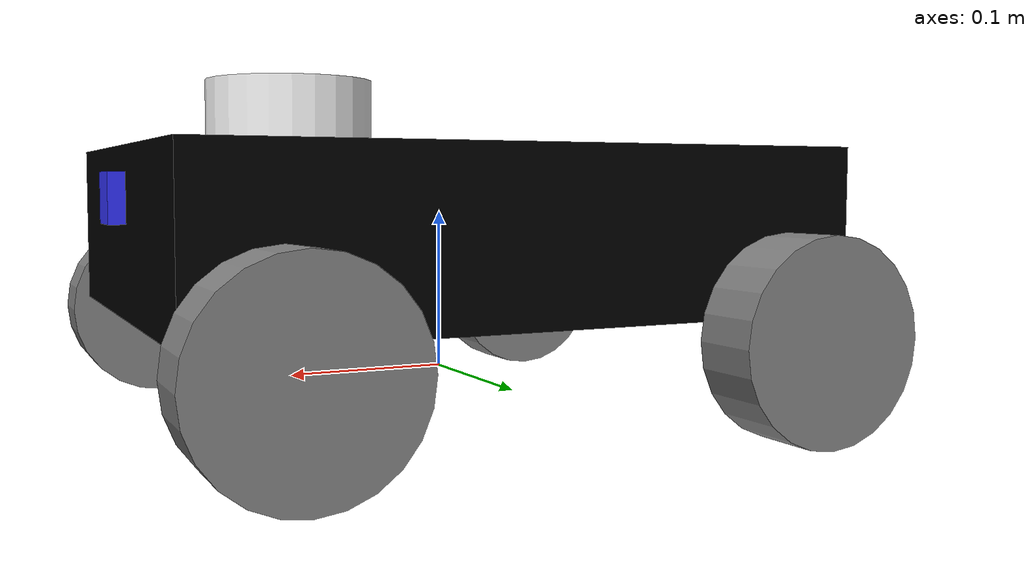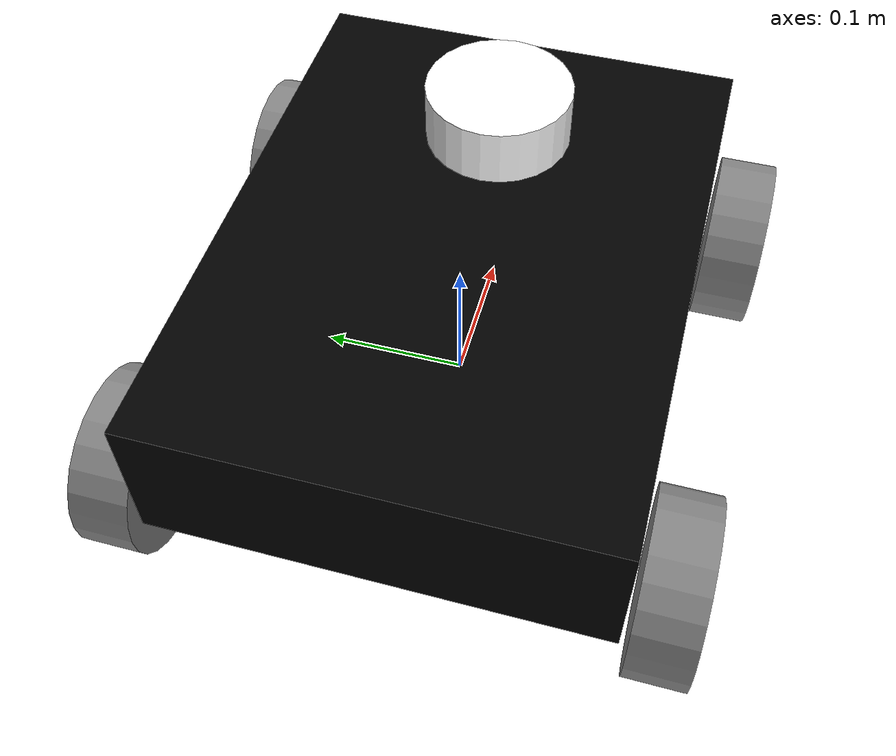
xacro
<?xml version="1.0"?>
<robot xmlns:xacro="http://www.ros.org/wiki/xacro">

    <xacro:include filename="inertial_macro.xacro" />
    <xacro:include filename="gazebo_control.xacro" />
    <xacro:include filename="lidar.xacro" />
    <xacro:include filename="camera.xacro" />

    <material name="white">
        <color rgba="1 1 1 1"/>
    </material>

    <material name="gray">
        <color rgba="0.52 0.52 0.52 1"/>
    </material>

    <material name="blue">
        <color rgba="0.2 0.2 1 1"/>
    </material>

    <material name="black">
        <color rgba="0 0 0 1"/>
    </material>

    <!--Define robot constants-->
    <xacro:property name = "base_width" value="0.3"/>
    <xacro:property name = "base_height" value="0.1"/>
    <xacro:property name = "base_length" value="0.4"/>

    <xacro:property name = "wheel_radius" value="0.06"/>
    <xacro:property name = "wheel_width" value="0.04"/>
    <xacro:property name = "wheel_ygap" value="0.025"/>
    <xacro:property name = "wheel_zoff" value="0.03"/>
    <xacro:property name = "wheel_xoff" value="0.15"/>

    <!--Robot Footprint-required for navigation to get robot center-->
    <link name="base_footprint">
    </link>

    <joint name="base_footprint_to_base_link" type="fixed">
        <parent link="base_footprint"/>
        <child link="base_link"/>
        <origin xyz="0.0 0.0 ${(wheel_radius+wheel_zoff)}" rpy="0 0 0"/>
    </joint>

    <!--Robot base-->
    <link name="base_link">
        <visual>
            <origin xyz="0 0 0" rpy="0 0 0"/>
            <geometry>
                <box size="${base_length} ${base_width} ${base_height}"/>
            </geometry>
            <material name="black"/>
        </visual>
        <collision>
            <geometry>
                <box size="${base_length} ${base_width} ${base_height}"/>
            </geometry>
        </collision>
        <xacro:inertial_box
            mass="15" y="${base_width}" z="${base_height}" x="${base_length}">
            <origin xyz="0 0 0" rpy="0 0 0"/>
        </xacro:inertial_box>
    </link>
    <gazebo reference="base_link">
        <material>Gazebo/Black</material>
    </gazebo>

    <!-- Wheels -->
    <xacro:macro name="wheel" params="prefix x_reflect y_reflect pitch axis">

        <joint name="${prefix}_joint" type="continuous">
            <parent link="base_footprint"/>
            <child link="${prefix}_link"/>
            <origin xyz="${x_reflect*wheel_xoff} ${y_reflect*(base_width/2+wheel_ygap)} ${wheel_zoff}" rpy="${pitch*pi/2} 0 0"/>
            <axis xyz="0 0 ${axis}"/>
        </joint>

        <link name="${prefix}_link">
            <visual>
                <origin xyz="0 0 0" rpy="0 0 0"/>
                <geometry>
                    <cylinder radius="${wheel_radius}" length="${wheel_width}"/>
                </geometry>
                <material name="gray"/>
            </visual>
            <collision>
                <origin xyz="0 0 0" rpy="0 0 0"/>
                <geometry>
                    <cylinder radius="${wheel_radius}" length="${wheel_width}"/>
                </geometry>
            </collision>
            <xacro:inertial_cylinder
                mass="0.5" radius="${wheel_radius}" length="${wheel_width}">
                <origin xyz="0 0 0" rpy="0 0 0"/>
            </xacro:inertial_cylinder>
        </link>
        <gazebo reference="${prefix}_link">
            <material>Gazebo/Gray</material>
        </gazebo>

    </xacro:macro>

    <xacro:wheel prefix="front_lwheel" x_reflect="1" y_reflect="1" pitch="-1" axis="1"/>
    <xacro:wheel prefix="front_rwheel" x_reflect="1" y_reflect="-1" pitch="1" axis="-1"/>
    <xacro:wheel prefix="rear_lwheel" x_reflect="-1" y_reflect="1" pitch="-1" axis="1"/>
    <xacro:wheel prefix="rear_rwheel" x_reflect="-1" y_reflect="-1" pitch="1" axis="-1"/>

</robot>

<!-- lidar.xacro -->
<robot xmlns:xacro="http://www.ros.org/wiki/xacro" >

    <joint name="laser_joint" type="fixed">
        <parent link="base_link"/>
        <child link="laser_sensor"/>
        <origin xyz="0.1 0.0 0.07" rpy=" 0 0 0"/>
    </joint>

    <link name="laser_sensor">
        <visual>
            <geometry>
                <cylinder radius="0.05" length="0.04"/>
            </geometry>
            <material name="white"/>
        </visual>
        <collision>
            <geometry>
                <cylinder radius="0.05" length="0.04"/>
            </geometry>
        </collision>

        <xacro:inertial_cylinder mass="0.1" length="0.04" radius="0.05">
            <origin xyz="0 0 0" rpy="0 0 0"/>
        </xacro:inertial_cylinder>

    </link>

    <gazebo reference="laser_sensor">
        <material>Gazebo/White</material>
        <sensor name="laser" type="ray">
            <pose> 0 0 0 0 0 0 </pose>
            <visualize>false</visualize>
            <update_rate>10</update_rate>
            <ray>
                <scan>
                    <horizontal>
                        <samples>360</samples>
                        <min_angle>-3.14</min_angle>
                        <max_angle>3.14</max_angle>
                    </horizontal>
                </scan>
                <range>
                    <min>0.3</min>
                    <max>12</max>
                </range>
            </ray>
            <plugin name="laser_controller" filename="libgazebo_ros_ray_sensor.so">
                <ros>
                    <remapping>~/out:=scan</remapping>
                </ros>
                <output_type>sensor_msgs/LaserScan</output_type>
                <frame_name>laser_sensor</frame_name>
            </plugin>
        </sensor>

    </gazebo>

</robot>

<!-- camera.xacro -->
<robot xmlns:xacro="http://www.ros.org/wiki/xacro" >

    <joint name ="camera_joint" type="fixed">
        <parent link="base_link"/>
        <child link="camera_link"/>
        <origin xyz="0.205 0 0.020" rpy="0 0 0"/>
    </joint>

    <link name="camera_link">
        <visual>
            <geometry>
                <box size="0.010 0.03 0.03"/>
            </geometry>
            <material name="blue"/>
        </visual>
        <collision>
            <geometry>
                <box size="0.010 0.03 0.03"/>
            </geometry>
        </collision>
        <xacro:inertial_box
            mass="0.1" y="0.03" z="0.03" x="0.01">
            <origin xyz="0 0 0" rpy="0 0 0"/>
        </xacro:inertial_box>
    </link>

    <joint name="camera_optical_joint" type="fixed">
        <origin xyz="0 0 0" rpy="${-pi/2} 0 ${-pi/2}"/>
        <parent link="camera_link"/>
        <child link="camera_link_optical"/>
    </joint>
    <link name="camera_link_optical"></link>

    <gazebo reference="camera_link">

        <material>Gazebo/Blue</material>

        <sensor name="camera" type="camera">
            <pose> 0 0 0 0 0 0 </pose>
            <visualize>false</visualize>
            <update_rate>10</update_rate>
            <camera>
                <horizontal_fov>1.089</horizontal_fov>
                <image>
                    <format>R8G8B8</format>
                    <width>640</width>
                    <height>480</height>
                </image>
                <clip>
                    <near>0.05</near>
                    <far>8.0</far>
                </clip>
            </camera>
            <plugin name="camera_controller" filename="libgazebo_ros_camera.so">
                <frame_name>camera_link_optical</frame_name>
            </plugin>
        </sensor>
    </gazebo>

</robot>
